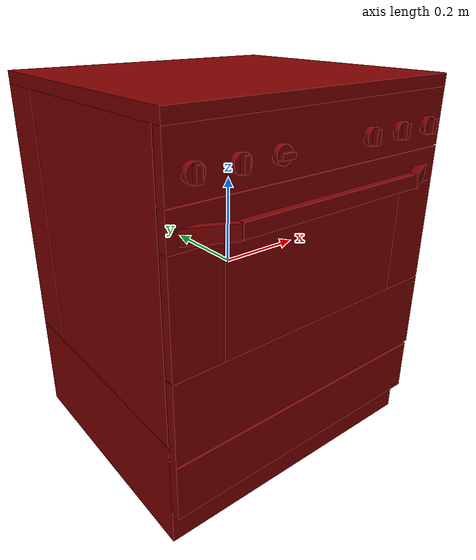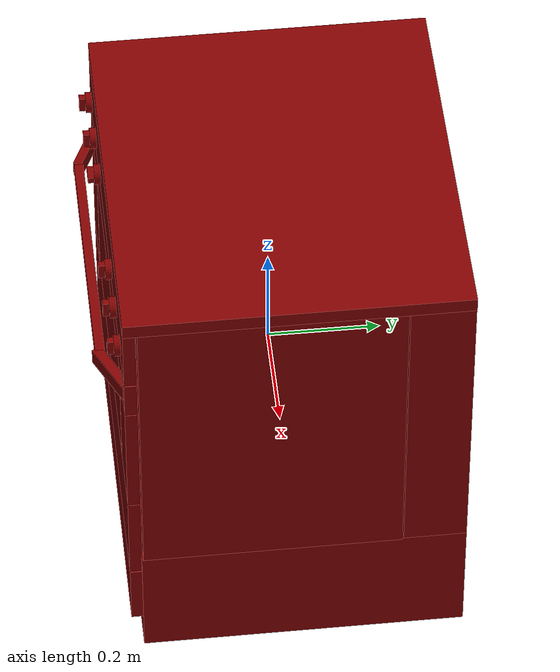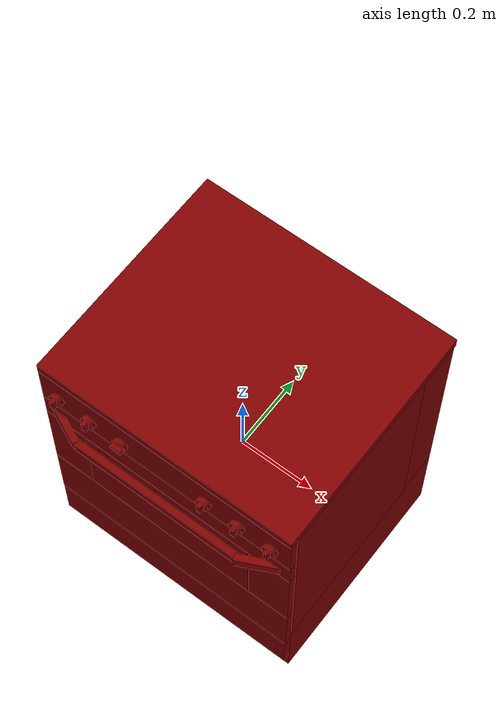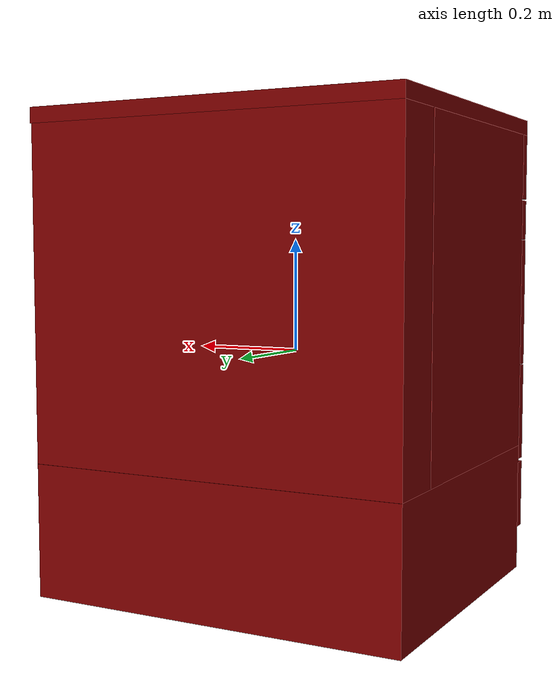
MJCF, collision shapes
<?xml version='1.0' encoding='UTF-8'?>
<mujoco model="model">
  <option timestep="0.002" gravity="0.0 0.0 -9.81"/>
  <compiler angle="radian"/>
  <asset>
    <mesh file="visuals/knob_front_left.obj" name="knob_front_left_vis"/>
    <mesh file="visuals/knob_front_right.obj" name="knob_front_right_vis"/>
    <mesh file="visuals/knob_rear_left.obj" name="knob_rear_left_vis"/>
    <mesh file="visuals/knob_rear_right.obj" name="knob_rear_right_vis"/>
    <mesh file="visuals/Body001.obj" name="Body001_vis"/>
    <mesh file="visuals/Door001.obj" name="Door001_vis"/>
    <mesh file="visuals/Door001_Clear.obj" name="Door001_Clear_vis"/>
    <mesh file="visuals/Handle.obj" name="Handle_vis"/>
    <mesh file="visuals/Knob001.obj" name="Knob001_vis"/>
    <mesh file="visuals/Knob002.obj" name="Knob002_vis"/>
    <mesh file="visuals/Shelf001.obj" name="Shelf001_vis"/>
    <mesh file="visuals/Shelf002.obj" name="Shelf002_vis"/>
    <texture file="visuals/T_BC001.png" name="Body001_material" type="2d"/>
    <material name="Body001_material" rgba="1 1 1 1.0" texture="Body001_material" shininess="0.4472135901451111" specular="2"/>
    <texture file="visuals/T_BC001.png" name="knob_front_left_material" type="2d"/>
    <material name="knob_front_left_material" rgba="1 1 1 1.0" texture="knob_front_left_material" shininess="0.4472135901451111" specular="0.3103448502657381"/>
    <texture file="visuals/T_BC001.png" name="knob_front_right_material" type="2d"/>
    <material name="knob_front_right_material" rgba="1 1 1 1.0" texture="knob_front_right_material" shininess="0.4472135901451111" specular="0.3103448502657381"/>
    <texture file="visuals/T_BC001.png" name="knob_rear_left_material" type="2d"/>
    <material name="knob_rear_left_material" rgba="1 1 1 1.0" texture="knob_rear_left_material" shininess="0.4472135901451111" specular="0.3103448502657381"/>
    <texture file="visuals/T_BC001.png" name="knob_rear_right_material" type="2d"/>
    <material name="knob_rear_right_material" rgba="1 1 1 1.0" texture="knob_rear_right_material" shininess="0.4472135901451111" specular="0.3103448502657381"/>
    <texture file="visuals/T_BC001.png" name="Door001_material" type="2d"/>
    <material name="Door001_material" rgba="1 1 1 1.0" texture="Door001_material" shininess="0.4472135901451111" specular="1"/>
    <texture file="visuals/T_BC001.png" name="Door001_Clear_material" type="2d"/>
    <material name="Door001_Clear_material" rgba="1 1 1 0.5" texture="Door001_Clear_material" shininess="0.4472135901451111" specular="0.3103448502657381"/>
    <texture file="visuals/T_BC001.png" name="Handle_material" type="2d"/>
    <material name="Handle_material" rgba="1 1 1 1.0" texture="Handle_material" shininess="0.4472135901451111" specular="1"/>
    <texture file="visuals/T_BC001.png" name="Knob001_material" type="2d"/>
    <material name="Knob001_material" rgba="1 1 1 1.0" texture="Knob001_material" shininess="0.4472135901451111" specular="0.3103448502657381"/>
    <texture file="visuals/T_BC001.png" name="Knob002_material" type="2d"/>
    <material name="Knob002_material" rgba="1 1 1 1.0" texture="Knob002_material" shininess="0.4472135901451111" specular="0.3103448502657381"/>
    <texture file="visuals/T_BC001.png" name="Shelf001_material" type="2d"/>
    <material name="Shelf001_material" rgba="1 1 1 1.0" texture="Shelf001_material" shininess="0.4472135901451111" specular="2"/>
    <texture file="visuals/T_BC001.png" name="Shelf002_material" type="2d"/>
    <material name="Shelf002_material" rgba="1 1 1 1.0" texture="Shelf002_material" shininess="0.4472135901451111" specular="2"/>
  </asset>
  <default>
    <default class="visual">
      <geom conaffinity="0" contype="0" group="1" type="mesh"/>
    </default>
    <default class="collision">
      <geom group="0" rgba="0.5 0 0 0.5"/>
    </default>
    <default class="spawn">
      <geom group="0" rgba="1 1 1 0.5" contype="0" conaffinity="0"/>
      <site group="0" rgba="1 1 1 0.5"/>
    </default>
    <default class="region">
      <geom group="1" conaffinity="0" contype="0" rgba="0 1 0 0"/>
    </default>
  </default>
  <worldbody>
    <body>
      <body name="object">
        <geom mesh="Body001_vis" type="mesh" solimp="0.998 0.998 0.001" solref="0.001 1" friction="0.95 0.3 0.1" class="visual" material="Body001_material"/>
        <geom class="collision" type="box" pos="-0.001345 0.028907 -0.305463" size="0.34060680866241455 0.2884152829647064 0.11766926944255829" quat="1.0 0.0 0.0 0.0" density="1000.0"/>
        <geom class="collision" type="box" pos="0.000092 0.017815 0.409357" size="0.3420432209968567 0.29950711131095886 0.013472162187099457" quat="1.0 0.0 0.0 0.0" density="1000.0"/>
        <geom class="collision" type="box" pos="-0.326935 -0.027033 0.104109" size="0.015016667544841766 0.2296321988105774 0.291776180267334" quat="1.0 0.0 0.0 0.0" density="1000.0"/>
        <geom class="collision" type="box" pos="0.326537 -0.027033 0.104109" size="0.01567387580871582 0.2296321988105774 0.291776180267334" quat="1.0 0.0 0.0 0.0" density="1000.0"/>
        <geom class="collision" type="box" pos="-0.001345 0.261339 0.104128" size="0.34060680866241455 0.0559837743639946 0.2917565703392029" quat="1.0 0.0 0.0 0.0" density="1000.0"/>
        <geom class="collision" type="box" pos="0.000092 -0.270918 0.336625" size="0.3420432209968567 0.010657325387001038 0.05926032364368439" quat="1.0 0.0 0.0 0.0" density="1000.0"/>
        <geom class="collision" type="box" pos="-0.001345 -0.269161 -0.282804" size="0.34060680866241455 0.011776996776461601 0.06213369593024254" quat="1.0 0.0 0.0 0.0" density="1000.0"/>
        <geom class="collision" type="box" pos="0.299006 -0.018005 0.070398" size="0.01058216392993927 0.20792925357818604 0.006099313497543335" quat="1.0 0.0 0.0 0.0" density="1000.0"/>
        <geom class="collision" type="box" pos="0.299006 -0.018005 -0.073694" size="0.01058216392993927 0.20792925357818604 0.006099313497543335" quat="1.0 0.0 0.0 0.0" density="1000.0"/>
        <geom class="collision" type="box" pos="-0.300013 -0.018005 -0.073694" size="0.01058216392993927 0.20792925357818604 0.006099313497543335" quat="1.0 0.0 0.0 0.0" density="1000.0"/>
        <geom class="collision" type="box" pos="-0.300013 -0.018005 0.070398" size="0.01058216392993927 0.20792925357818604 0.006099313497543335" quat="1.0 0.0 0.0 0.0" density="1000.0"/>
        <geom class="collision" type="box" pos="-0.002937 -0.025614 0.314667" size="0.3087165951728821 0.22755911946296692 0.07761799544095993" quat="1.0 0.0 0.0 0.0" density="1000.0"/>
        <body name="knob_front_left">
          <joint axis="0.0 -1.0 0.0" pos="-0.293222 -0.293049 0.323994" limited="true" name="knob_front_left_joint" range="0.0 3.141592653589793" type="hinge" damping="0.05" armature="0.001"/>
          <geom mesh="knob_front_left_vis" type="mesh" solimp="0.998 0.998 0.001" solref="0.001 1" friction="0.95 0.3 0.1" class="visual" material="knob_front_left_material"/>
          <geom class="collision" type="cylinder" pos="-0.293341 -0.287745 0.323994" size="0.018288765102624893 0.00562359718605876" quat="0.7071068286895752 0.7071067690849304 0.0 0.0" density="1000.0"/>
          <geom class="collision" type="box" pos="-0.293280 -0.298911 0.323994" size="0.005763246212154627 0.005637200549244881 0.014712465927004814" quat="1.0 0.0 0.0 0.0" density="1000.0" name="knob_front_left_main"/>
        </body>
        <body name="knob_front_right">
          <joint axis="0.0 -1.0 0.0" pos="0.291014 -0.293049 0.323994" limited="true" name="knob_front_right_joint" range="0.0 3.141592653589793" type="hinge" damping="0.05" armature="0.001"/>
          <geom mesh="knob_front_right_vis" type="mesh" solimp="0.998 0.998 0.001" solref="0.001 1" friction="0.95 0.3 0.1" class="visual" material="knob_front_right_material"/>
          <geom class="collision" type="cylinder" pos="0.290861 -0.287745 0.323994" size="0.018288765102624893 0.00562359718605876" quat="0.7071068286895752 0.7071067690849304 0.0 0.0" density="1000.0"/>
          <geom class="collision" type="box" pos="0.290861 -0.298911 0.323994" size="0.005763246212154627 0.005637200549244881 0.014712465927004814" quat="1.0 0.0 0.0 0.0" density="1000.0" name="knob_front_right_main"/>
        </body>
        <body name="knob_rear_left">
          <joint axis="0.0 -1.0 0.0" pos="-0.203689 -0.293049 0.323994" limited="true" name="knob_rear_left_joint" range="0.0 3.141592653589793" type="hinge" damping="0.05" armature="0.001"/>
          <geom mesh="knob_rear_left_vis" type="mesh" solimp="0.998 0.998 0.001" solref="0.001 1" friction="0.95 0.3 0.1" class="visual" material="knob_rear_left_material"/>
          <geom class="collision" type="cylinder" pos="-0.203736 -0.287745 0.323994" size="0.018288765102624893 0.00562359718605876" quat="0.7071068286895752 0.7071067690849304 0.0 0.0" density="1000.0"/>
          <geom class="collision" type="box" pos="-0.203736 -0.298911 0.323994" size="0.005763246212154627 0.005637200549244881 0.014712465927004814" quat="1.0 0.0 0.0 0.0" density="1000.0" name="knob_rear_left_main"/>
        </body>
        <body name="knob_rear_right">
          <joint axis="0.0 -1.0 0.0" pos="0.202782 -0.293049 0.323994" limited="true" name="knob_rear_right_joint" range="0.0 3.141592653589793" type="hinge" damping="0.05" armature="0.001"/>
          <geom mesh="knob_rear_right_vis" type="mesh" solimp="0.998 0.998 0.001" solref="0.001 1" friction="0.95 0.3 0.1" class="visual" material="knob_rear_right_material"/>
          <geom class="collision" type="cylinder" pos="0.202760 -0.287745 0.323994" size="0.018288765102624893 0.00562359718605876" quat="0.7071068286895752 0.7071067690849304 0.0 0.0" density="1000.0"/>
          <geom class="collision" type="box" pos="0.202760 -0.298911 0.323994" size="0.005763246212154627 0.005637200549244881 0.014712465927004814" quat="1.0 0.0 0.0 0.0" density="1000.0" name="knob_rear_right_main"/>
        </body>
        <body name="Door001">
          <joint axis="1.0 0.0 0.0" pos="-0.001650 -0.274649 -0.213284" limited="true" name="Door001_joint" range="0.0 1.5707963267948966" type="hinge" damping="1" frictionloss="1" armature=".01" stiffness="0.05"/>
          <geom mesh="Door001_vis" type="mesh" solimp="0.998 0.998 0.001" solref="0.001 1" friction="0.95 0.3 0.1" class="visual" material="Door001_material"/>
          <geom class="collision" type="box" pos="0.000092 -0.270918 0.238205" size="0.3420432209968567 0.010657325387001038 0.03610397130250931" quat="1.0 0.0 0.0 0.0" density="1000.0"/>
          <geom class="collision" type="box" pos="0.000092 -0.270918 -0.124488" size="0.3420432209968567 0.010657325387001038 0.08934362232685089" quat="1.0 0.0 0.0 0.0" density="1000.0"/>
          <geom class="collision" type="box" pos="-0.286898 -0.270918 0.083591" size="0.05505415052175522 0.010657340288162231 0.116853728890419" quat="1.0 0.0 0.0 0.0" density="1000.0"/>
          <geom class="collision" type="box" pos="0.286500 -0.270918 0.083591" size="0.05571136623620987 0.010657340288162231 0.116853728890419" quat="1.0 0.0 0.0 0.0" density="1000.0"/>
          <body name="Door001_Clear">
            <geom mesh="Door001_Clear_vis" type="mesh" solimp="0.998 0.998 0.001" solref="0.001 1" friction="0.95 0.3 0.1" class="visual" material="Door001_Clear_material"/>
            <geom class="collision" type="box" pos="-0.000451 -0.270918 0.083892" size="0.22933340072631836 0.010657325387001038 0.11748269945383072" quat="1.0 0.0 0.0 0.0" density="1000.0"/>
          </body>
          <body name="Handle">
            <geom mesh="Handle_vis" type="mesh" solimp="0.998 0.998 0.001" solref="0.001 1" friction="0.95 0.3 0.1" class="visual" material="Handle_material"/>
            <geom class="collision" type="box" pos="-0.000566 -0.313257 0.225629" size="0.22329793870449066 0.008149610832333565 0.014712465927004814" quat="1.0 0.0 0.0 0.0" density="1000.0"/>
            <geom class="collision" type="box" pos="-0.271328 -0.294712 0.225629" size="0.0504954494535923 0.007825186476111412 0.014712467789649963" quat="0.9773966073989868 0.0 -0.0 -0.21141402423381805" density="1000.0"/>
            <geom class="collision" type="box" pos="0.266865 -0.295219 0.225629" size="0.05358435586094856 0.009109174832701683 0.014712467789649963" quat="0.9747940301895142 0.0 0.0 0.22310669720172882" density="1000.0"/>
          </body>
        </body>
        <body name="Knob001">
          <joint axis="0.0 1.0 0.0" pos="-0.114956 -0.291609 0.323994" limited="true" name="Knob001_joint" range="0.0 5.410520681182422" type="hinge" damping="0.05" armature="0.001"/>
          <geom mesh="Knob001_vis" type="mesh" solimp="0.998 0.998 0.001" solref="0.001 1" friction="0.95 0.3 0.1" class="visual" material="Knob001_material"/>
          <geom class="collision" type="cylinder" pos="-0.114956 -0.287745 0.323994" size="0.018288765102624893 0.00562359718605876" quat="0.7071068286895752 0.7071067690849304 0.0 0.0" density="1000.0"/>
          <geom class="collision" type="box" pos="-0.114956 -0.298911 0.323994" size="0.01471246499568224 0.005637200549244881 0.0057632471434772015" quat="1.0 0.0 0.0 0.0" density="1000.0"/>
        </body>
        <body name="Knob002">
          <joint axis="0.0 1.0 0.0" pos="0.113679 -0.291609 0.323994" limited="true" name="Knob002_joint" range="0.0 5.585053606381854" type="hinge" damping="0.05" armature="0.001"/>
          <geom mesh="Knob002_vis" type="mesh" solimp="0.998 0.998 0.001" solref="0.001 1" friction="0.95 0.3 0.1" class="visual" material="Knob002_material"/>
          <geom class="collision" type="cylinder" pos="0.113679 -0.287745 0.323994" size="0.018288765102624893 0.00562359718605876" quat="0.7071068286895752 0.7071067690849304 0.0 0.0" density="1000.0"/>
          <geom class="collision" type="box" pos="0.113679 -0.298911 0.323994" size="0.005763246212154627 0.005637200549244881 0.014712465927004814" quat="1.0 0.0 0.0 0.0" density="1000.0"/>
        </body>
        <body name="Shelf001">
          <joint axis="0.0 -1.0 0.0" pos="0.000170 -0.022885 0.084725" limited="true" name="Shelf001_joint" range="0.0 0.35" type="slide" damping="1" frictionloss="1" armature=".01" stiffness="0.05"/>
          <geom mesh="Shelf001_vis" type="mesh" solimp="0.998 0.998 0.001" solref="0.001 1" friction="0.95 0.3 0.1" class="visual" material="Shelf001_material"/>
          <geom class="collision" type="box" pos="0.000897 -0.024765 0.084725" size="0.3048071265220642 0.20225954055786133 0.0029128380119800568" quat="1.0 0.0 0.0 0.0" density="1000.0"/>
        </body>
        <body name="Shelf002">
          <joint axis="0.0 -1.0 0.0" pos="0.000170 -0.022885 -0.062323" limited="true" name="Shelf002_joint" range="0.0 0.35" type="slide" damping="1" frictionloss="1" armature=".01" stiffness="0.05"/>
          <geom mesh="Shelf002_vis" type="mesh" solimp="0.998 0.998 0.001" solref="0.001 1" friction="0.95 0.3 0.1" class="visual" material="Shelf002_material"/>
          <geom class="collision" type="box" pos="0.000897 -0.024765 -0.062323" size="0.3083447217941284 0.20225954055786133 0.0029128380119800568" quat="1.0 0.0 0.0 0.0" density="1000.0"/>
        </body>
        <geom class="region" name="reg_int" type="box" pos="-0.00013900000000000023 -0.025976000000000013 0.023055000000000006" size="0.313933 0.23128100000000001 0.21408100000000002"/>
        <site type="cylinder" rgba="0.5 0 0 0.5" size="0.09726988524198532 0.0001" pos="0.172331 0.169635 0.420848" name="burner_on_rear_right"/>
        <site type="cylinder" rgba="0.5 0 0 0.5" size="0.1105893924832344 0.0001" pos="-0.176589 0.164448 0.420848" name="burner_on_rear_left"/>
        <site type="cylinder" rgba="0.5 0 0 0.5" size="0.10360172390937805 0.0001" pos="0.172475 -0.089656 0.420848" name="burner_on_front_right"/>
        <site type="cylinder" rgba="0.5 0 0 0.5" size="0.08202367275953293 0.0001" pos="-0.176684 -0.099184 0.420848" name="burner_on_front_left"/>
        <site name="burner_rear_right_place_site" type="cylinder" rgba="0.5 0 0 0" size="0.09726988524198532 4.999999873689376e-05" pos="0.172331 0.169635 0.420848"/>
        <site name="burner_rear_left_place_site" type="cylinder" rgba="0.5 0 0 0" size="0.1105893924832344 4.999999873689376e-05" pos="-0.176589 0.164448 0.420848"/>
        <site name="burner_front_right_place_site" type="cylinder" rgba="0.5 0 0 0" size="0.10360172390937805 4.999999873689376e-05" pos="0.172475 -0.089656 0.420848"/>
        <site name="burner_front_left_place_site" type="cylinder" rgba="0.5 0 0 0" size="0.08202367275953293 4.999999873689376e-05" pos="-0.176684 -0.099184 0.420848"/>
        <geom class="region" name="reg_main" type="box" pos="4.999999999866223e-07 0.01904249999999999 0.0" size="0.3443765 0.30103650000000004 0.423132"/>
      </body>
    </body>
  </worldbody>
  <actuator>
    <motor name="knob_front_left_joint_actuator" joint="knob_front_left_joint" gear="10"/>
    <motor name="knob_front_right_joint_actuator" joint="knob_front_right_joint" gear="10"/>
    <motor name="knob_rear_left_joint_actuator" joint="knob_rear_left_joint" gear="10"/>
    <motor name="knob_rear_right_joint_actuator" joint="knob_rear_right_joint" gear="10"/>
    <motor name="Door001_joint_actuator" joint="Door001_joint" gear="50"/>
    <motor name="Knob001_joint_actuator" joint="Knob001_joint" gear="50"/>
    <motor name="Knob002_joint_actuator" joint="Knob002_joint" gear="50"/>
    <motor name="Shelf001_joint_actuator" joint="Shelf001_joint" gear="50"/>
    <motor name="Shelf002_joint_actuator" joint="Shelf002_joint" gear="50"/>
  </actuator>
</mujoco>
